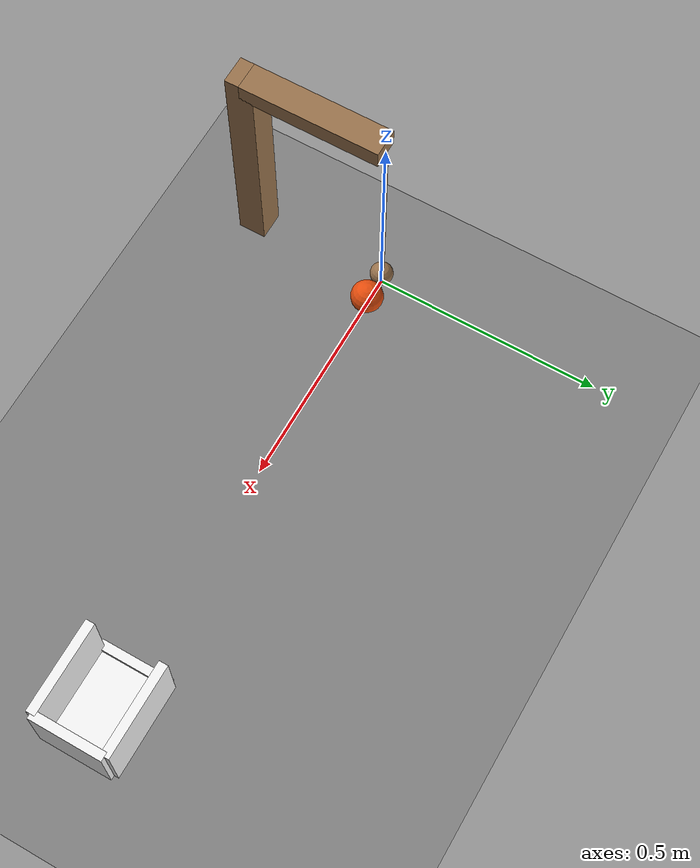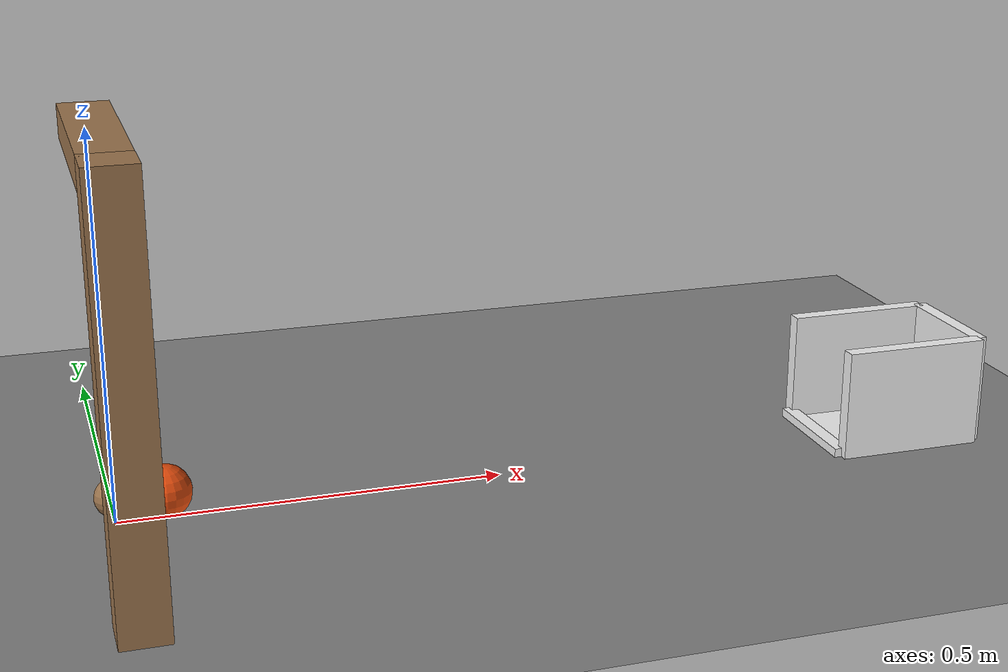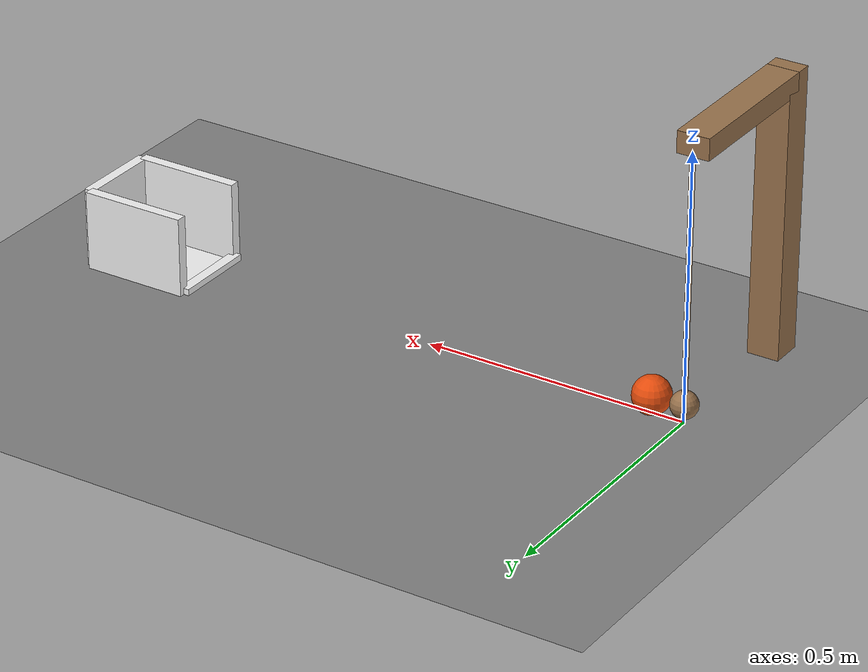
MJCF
<mujoco model="pendulum_strikes_ball_into_cup">
  <compiler angle="radian"/>
  <option timestep="0.002"/>
  <worldbody>
    <geom name="floor" type="plane" size="6 6 0.1" friction="0.8 0.001 0.0001"/>
    <geom name="pendulum_stand_arm" type="box" pos="0 -0.15 0.51" size="0.03 0.15 0.02" friction="0.1 0.005 0.0001" rgba="0.6 0.45 0.3 1"/>
    <geom name="pendulum_stand_post" type="box" pos="0 -0.3 0.265" size="0.03 0.03 0.265" friction="0.1 0.005 0.0001" rgba="0.6 0.45 0.3 1"/>
    <body name="pendulum" pos="0 0 0.485">
      <joint name="pivot" type="hinge" pos="0 0 0" axis="0 1 0"/>
      <geom name="pendulum_bob" type="sphere" pos="0 0 -0.45" size="0.025" mass="0.5" friction="0.1 0.005 0.0001" rgba="0.6 0.45 0.3 1"/>
      <geom name="pendulum_rod" type="capsule" size="0.005" fromto="0 0 0 0 0 -0.425" mass="0.04" friction="0.1 0.005 0.0001" rgba="0.6 0.45 0.3 1"/>
    </body>
    <body name="ball" pos="0.062 0 0.035">
      <freejoint/>
      <geom name="ball" type="sphere" pos="0 0 0" size="0.035" mass="0.08" condim="6" friction="0.8 0.001 0.0001" rgba="0.9 0.3 0.05 1"/>
    </body>
    <body name="cup">
      <geom name="cup_base" type="box" pos="1.062 0 0.001" size="0.1 0.08 0.001" friction="0.8 0.001 0.0001" solref="0.01 1" rgba="0.95 0.95 0.95 1"/>
      <geom name="cup_near_wall" type="box" pos="0.962 0 0.006" size="0.01 0.08 0.006" friction="0.8 0.001 0.0001" solref="0.01 1" rgba="0.95 0.95 0.95 1"/>
      <geom name="cup_far_wall" type="box" pos="1.162 0 0.075" size="0.01 0.08 0.075" friction="0.8 0.001 0.0001" solref="0.01 1" rgba="0.95 0.95 0.95 1"/>
      <geom name="cup_left_wall" type="box" pos="1.062 0.08 0.075" size="0.1 0.01 0.075" friction="0.8 0.001 0.0001" solref="0.01 1" rgba="0.95 0.95 0.95 1"/>
      <geom name="cup_right_wall" type="box" pos="1.062 -0.08 0.075" size="0.1 0.01 0.075" friction="0.8 0.001 0.0001" solref="0.01 1" rgba="0.95 0.95 0.95 1"/>
    </body>
  </worldbody>
  <keyframe>
    <key name="start" qpos="0.698132 0.062 0 0.035 1 0 0 0" qvel="0 0 0 0 0 0 0"/>
  </keyframe>
</mujoco>
